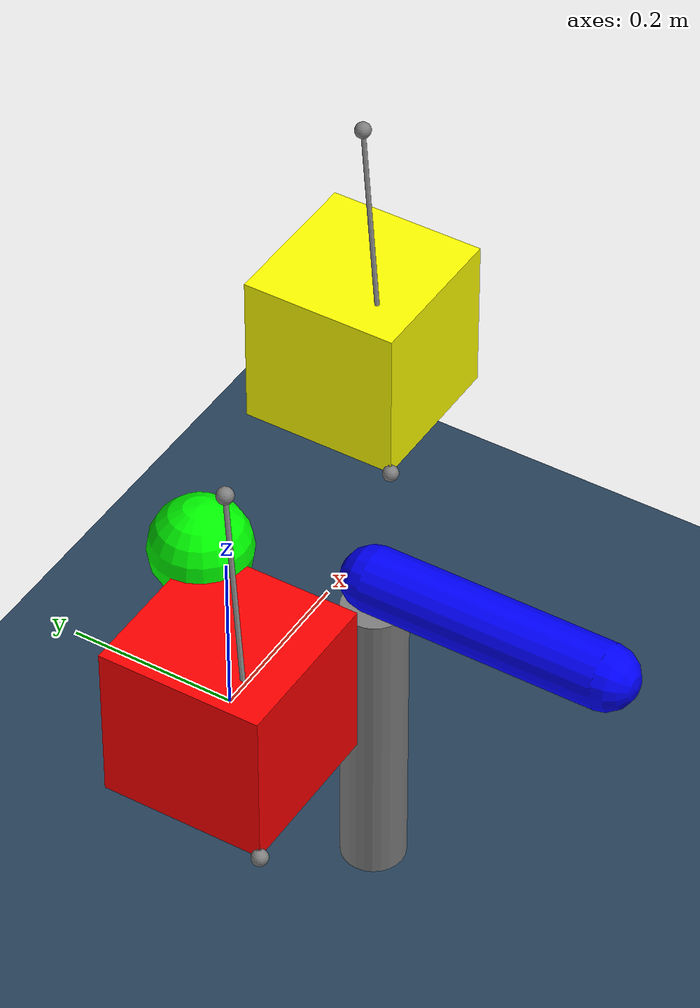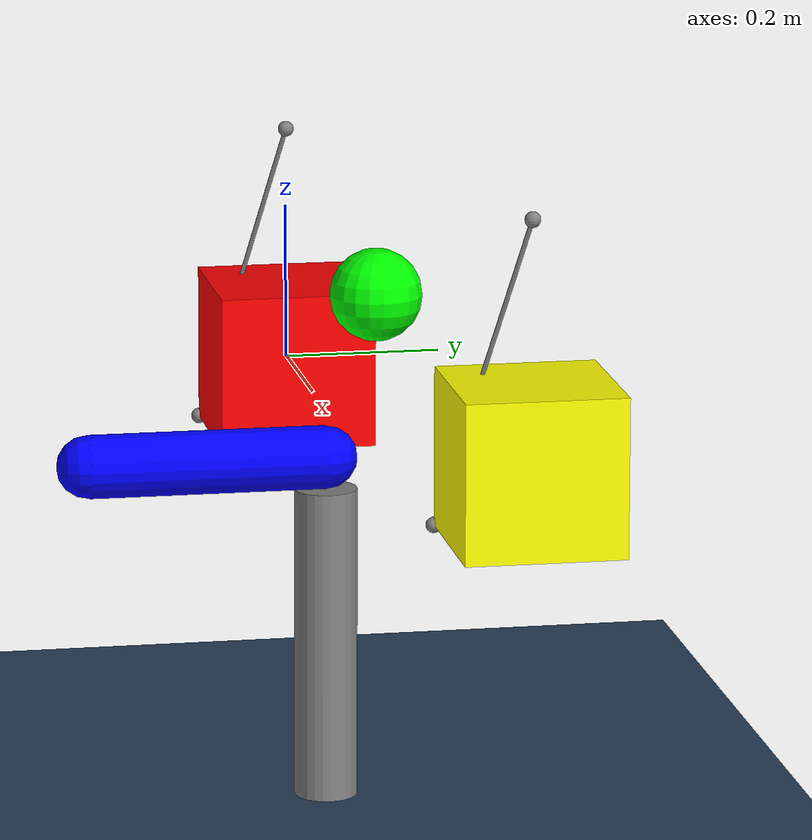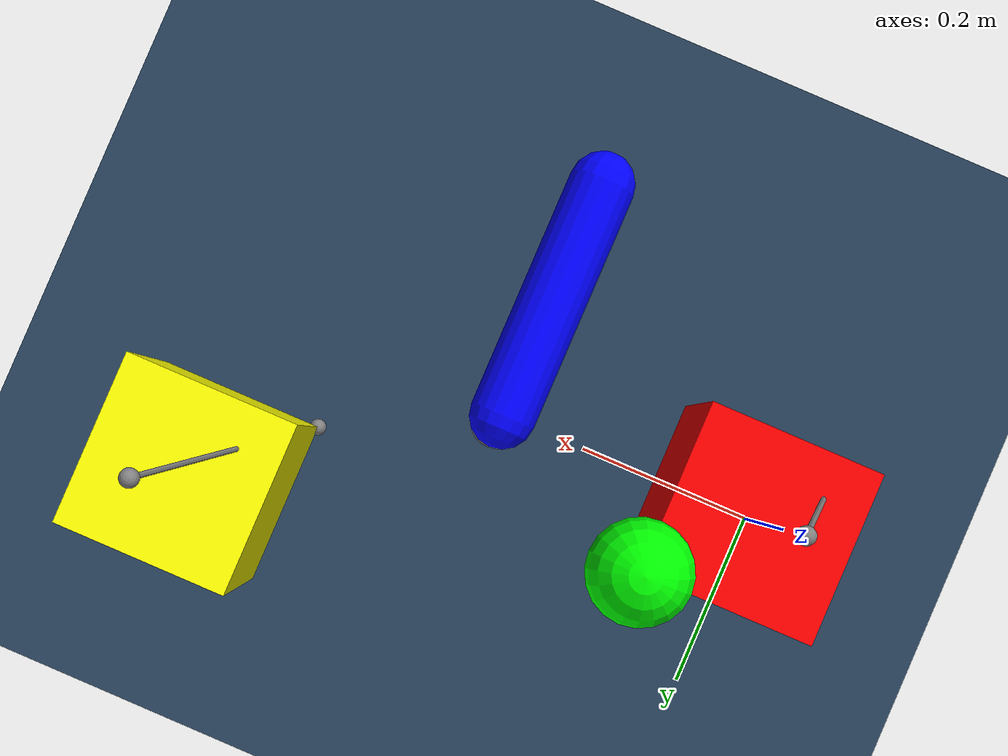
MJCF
<mujoco>
  <asset>
    <texture name="grid" type="2d" builtin="checker" rgb1=".1 .2 .3"
     rgb2=".2 .3 .4" width="300" height="300" mark="none"/>
    <material name="grid" texture="grid" texrepeat="1 1"
     texuniform="true" reflectance=".2"/>
  </asset>

  <worldbody>
    <light name="light" pos="0 0 1"/>
    <geom name="floor" type="plane" pos="0 0 -.5" size="2 2 .1" material="grid"/>
    <site name="anchor" pos="0 0 .3" size=".01"/>
    <site name="anchor_box" pos=".6 .2 .3" size=".01"/>
    <camera name="fixed" pos="0 -1.3 .5" xyaxes="1 0 0 0 1 2"/>

    <geom name="pole" type="cylinder" fromto=".3 0 -.5 .3 0 -.1" size=".04"/>
    <body name="bat" pos=".3 0 -.1">
      <joint name="swing" type="hinge" damping="1" axis="0 0 1"/>
      <geom name="bat" type="capsule" fromto="0 0 .04 0 -.3 .04"
       size=".04" rgba="0 0 1 1"/>
    </body>

    <body name="box_and_sphere" pos="0 0 0">
      <joint name="free" type="free"/>
      <geom name="red_box" type="box" size=".1 .1 .1" rgba="1 0 0 1"/>
      <geom name="green_sphere"  size=".06" pos=".1 .1 .1" rgba="0 1 0 1"/>
      <site name="hook" pos="-.1 -.1 -.1" size=".01"/>
      <site name="IMU"/>
    </body>

    <body name="box" pos=".6 .2 0">
      <joint name="box_free" type="free"/>
      <geom name="box" type="box" size=".1 .1 .1" rgba="1 1 0 1"/>
      <site name="hook_t" pos="-.1 -.1 -.1" size=".01"/>
    </body>
  </worldbody>

  <tendon>
    <spatial name="wire" limited="true" range="0 0.35" width="0.003">
      <site site="anchor"/>
      <site site="hook"/>
    </spatial>
    <spatial name="wire_t" limited="true" range="0 0.35" width="0.003">
      <site site="anchor_box"/>
      <site site="hook_t"/>
    </spatial>
  </tendon>

  <actuator>
    <motor name="my_motor" joint="swing" gear="25"/>
  </actuator>

  <sensor>
    <accelerometer name="accelerometer" site="IMU"/>
  </sensor>
</mujoco>
